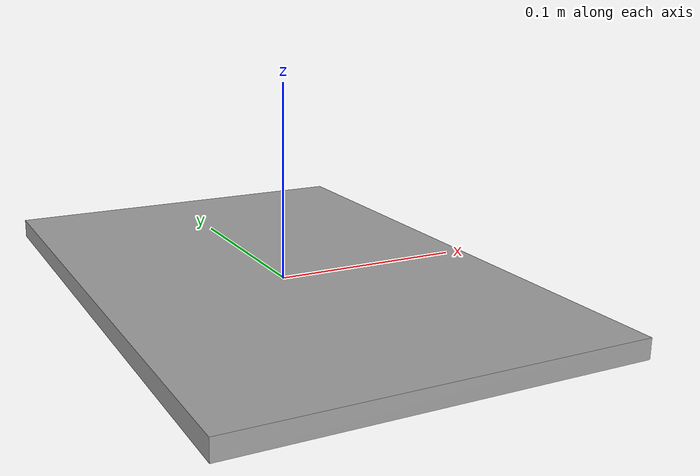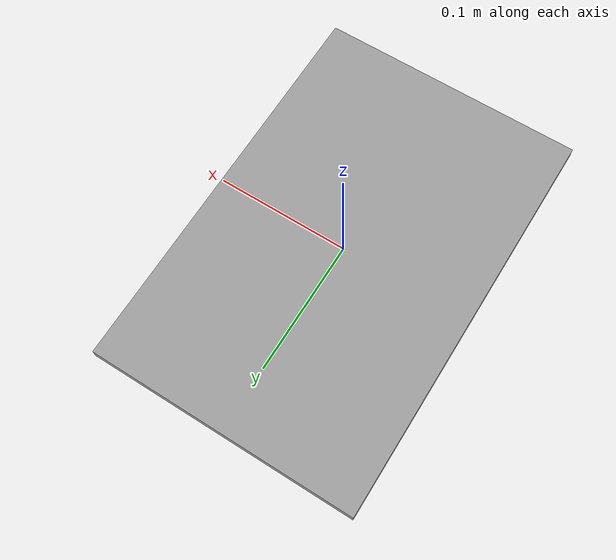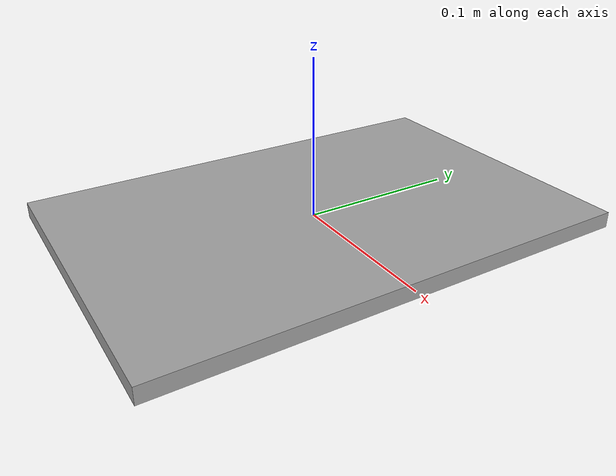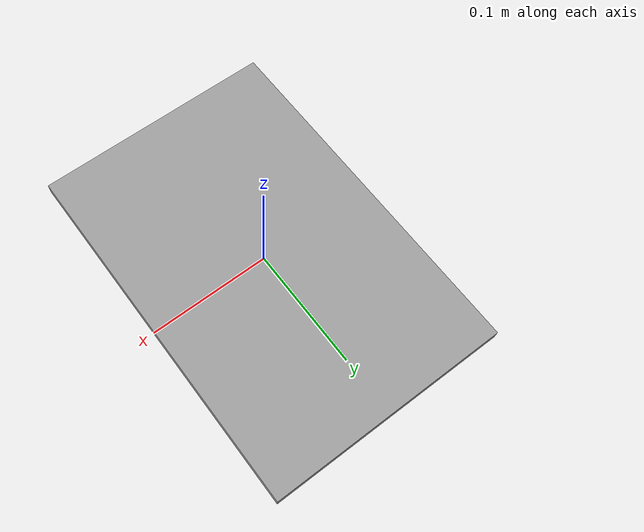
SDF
<?xml version="1.0" ?>
<sdf version="1.6">
  <model name="roboskel_sign">
    <pose>0 0 0 0 0 0</pose>
    <static>true</static>
    <link name="link">
      <visual name="visual">
        <geometry>
          <mesh>
            <uri>model://roboskel_sign/meshes/sign.dae</uri>
          </mesh>
        </geometry>
        <material>
          <script>
            <uri>model://roboskel_sign/materials/scripts</uri>
            <uri>model://roboskel_sign/materials/textures</uri>
            <name>Number/One</name>
          </script>
        </material>
      </visual>
    </link>
  </model>
</sdf>
